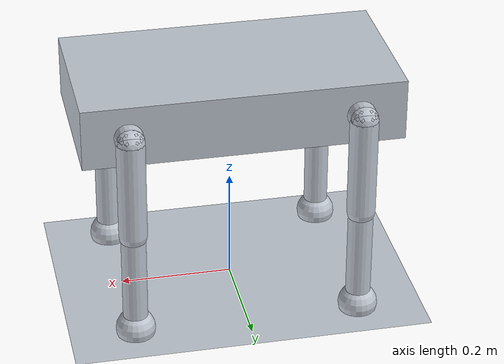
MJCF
<mujoco model="simple_quadruped">
  <compiler angle="radian" coordinate="local"/>

  <option timestep="0.002" gravity="0 0 -9.81" integrator="RK4"/>

  <default>
    <geom friction="1.0 0.005 0.0001" density="500" rgba="0.75 0.78 0.82 1"/>
    <joint damping="1.0" armature="0.01" limited="true"/>
    <position kp="35" dampratio="1" ctrllimited="true"/>
  </default>

  <asset>
    <texture name="grid" type="2d" builtin="checker" width="512" height="512"
             rgb1="0.18 0.20 0.22" rgb2="0.26 0.28 0.30"/>
    <material name="ground" texture="grid" texrepeat="6 6" reflectance="0.15"/>
    <material name="body" rgba="0.15 0.22 0.30 1"/>
    <material name="leg" rgba="0.82 0.61 0.30 1"/>
    <material name="foot" rgba="0.08 0.09 0.10 1"/>
  </asset>

  <worldbody>
    <light name="key" pos="0 -3 4" dir="0 1 -1" diffuse="0.8 0.8 0.8"/>
    <geom name="floor" type="plane" size="8 8 0.1" material="ground"/>

    <body name="base" pos="0 0 0.38">
      <freejoint name="base_free"/>
      <geom name="base_geom" type="box" size="0.28 0.14 0.055" material="body" mass="4.0"/>
      <site name="base_site" pos="0 0 0" size="0.015" rgba="0.1 0.8 0.9 1"/>

      <body name="front_left_hip" pos="0.20 0.11 0">
        <joint name="fl_hip_abduction" type="hinge" axis="1 0 0" range="-0.7 0.7"/>
        <geom name="fl_hip_geom" type="capsule" fromto="0 0 0 0 0.05 0" size="0.025" material="leg" mass="0.15"/>
        <body name="front_left_thigh" pos="0 0.05 0">
          <joint name="fl_hip_pitch" type="hinge" axis="0 1 0" range="-1.2 1.2"/>
          <geom name="fl_thigh_geom" type="capsule" fromto="0 0 0 0 0 -0.18" size="0.025" material="leg" mass="0.35"/>
          <body name="front_left_calf" pos="0 0 -0.18">
            <joint name="fl_knee" type="hinge" axis="0 1 0" range="-2.3 -0.15"/>
            <geom name="fl_calf_geom" type="capsule" fromto="0 0 0 0 0 -0.18" size="0.022" material="leg" mass="0.25"/>
            <body name="front_left_foot" pos="0 0 -0.19">
              <geom name="fl_foot_geom" type="sphere" size="0.035" material="foot" mass="0.08"/>
            </body>
          </body>
        </body>
      </body>

      <body name="front_right_hip" pos="0.20 -0.11 0">
        <joint name="fr_hip_abduction" type="hinge" axis="1 0 0" range="-0.7 0.7"/>
        <geom name="fr_hip_geom" type="capsule" fromto="0 0 0 0 -0.05 0" size="0.025" material="leg" mass="0.15"/>
        <body name="front_right_thigh" pos="0 -0.05 0">
          <joint name="fr_hip_pitch" type="hinge" axis="0 1 0" range="-1.2 1.2"/>
          <geom name="fr_thigh_geom" type="capsule" fromto="0 0 0 0 0 -0.18" size="0.025" material="leg" mass="0.35"/>
          <body name="front_right_calf" pos="0 0 -0.18">
            <joint name="fr_knee" type="hinge" axis="0 1 0" range="-2.3 -0.15"/>
            <geom name="fr_calf_geom" type="capsule" fromto="0 0 0 0 0 -0.18" size="0.022" material="leg" mass="0.25"/>
            <body name="front_right_foot" pos="0 0 -0.19">
              <geom name="fr_foot_geom" type="sphere" size="0.035" material="foot" mass="0.08"/>
            </body>
          </body>
        </body>
      </body>

      <body name="rear_left_hip" pos="-0.20 0.11 0">
        <joint name="rl_hip_abduction" type="hinge" axis="1 0 0" range="-0.7 0.7"/>
        <geom name="rl_hip_geom" type="capsule" fromto="0 0 0 0 0.05 0" size="0.025" material="leg" mass="0.15"/>
        <body name="rear_left_thigh" pos="0 0.05 0">
          <joint name="rl_hip_pitch" type="hinge" axis="0 1 0" range="-1.2 1.2"/>
          <geom name="rl_thigh_geom" type="capsule" fromto="0 0 0 0 0 -0.18" size="0.025" material="leg" mass="0.35"/>
          <body name="rear_left_calf" pos="0 0 -0.18">
            <joint name="rl_knee" type="hinge" axis="0 1 0" range="-2.3 -0.15"/>
            <geom name="rl_calf_geom" type="capsule" fromto="0 0 0 0 0 -0.18" size="0.022" material="leg" mass="0.25"/>
            <body name="rear_left_foot" pos="0 0 -0.19">
              <geom name="rl_foot_geom" type="sphere" size="0.035" material="foot" mass="0.08"/>
            </body>
          </body>
        </body>
      </body>

      <body name="rear_right_hip" pos="-0.20 -0.11 0">
        <joint name="rr_hip_abduction" type="hinge" axis="1 0 0" range="-0.7 0.7"/>
        <geom name="rr_hip_geom" type="capsule" fromto="0 0 0 0 -0.05 0" size="0.025" material="leg" mass="0.15"/>
        <body name="rear_right_thigh" pos="0 -0.05 0">
          <joint name="rr_hip_pitch" type="hinge" axis="0 1 0" range="-1.2 1.2"/>
          <geom name="rr_thigh_geom" type="capsule" fromto="0 0 0 0 0 -0.18" size="0.025" material="leg" mass="0.35"/>
          <body name="rear_right_calf" pos="0 0 -0.18">
            <joint name="rr_knee" type="hinge" axis="0 1 0" range="-2.3 -0.15"/>
            <geom name="rr_calf_geom" type="capsule" fromto="0 0 0 0 0 -0.18" size="0.022" material="leg" mass="0.25"/>
            <body name="rear_right_foot" pos="0 0 -0.19">
              <geom name="rr_foot_geom" type="sphere" size="0.035" material="foot" mass="0.08"/>
            </body>
          </body>
        </body>
      </body>
    </body>
  </worldbody>

  <actuator>
    <position name="fl_hip_abduction_position" joint="fl_hip_abduction" ctrlrange="-0.7 0.7"/>
    <position name="fl_hip_pitch_position" joint="fl_hip_pitch" ctrlrange="-1.2 1.2"/>
    <position name="fl_knee_position" joint="fl_knee" ctrlrange="-2.3 -0.15"/>
    <position name="fr_hip_abduction_position" joint="fr_hip_abduction" ctrlrange="-0.7 0.7"/>
    <position name="fr_hip_pitch_position" joint="fr_hip_pitch" ctrlrange="-1.2 1.2"/>
    <position name="fr_knee_position" joint="fr_knee" ctrlrange="-2.3 -0.15"/>
    <position name="rl_hip_abduction_position" joint="rl_hip_abduction" ctrlrange="-0.7 0.7"/>
    <position name="rl_hip_pitch_position" joint="rl_hip_pitch" ctrlrange="-1.2 1.2"/>
    <position name="rl_knee_position" joint="rl_knee" ctrlrange="-2.3 -0.15"/>
    <position name="rr_hip_abduction_position" joint="rr_hip_abduction" ctrlrange="-0.7 0.7"/>
    <position name="rr_hip_pitch_position" joint="rr_hip_pitch" ctrlrange="-1.2 1.2"/>
    <position name="rr_knee_position" joint="rr_knee" ctrlrange="-2.3 -0.15"/>
  </actuator>

  <keyframe>
    <key name="stand" qpos="0 0 0.32 1 0 0 0 0.15 0.65 -1.3 -0.15 0.65 -1.3 0.15 0.65 -1.3 -0.15 0.65 -1.3"
         ctrl="0.15 0.65 -1.3 -0.15 0.65 -1.3 0.15 0.65 -1.3 -0.15 0.65 -1.3"/>
  </keyframe>
</mujoco>
